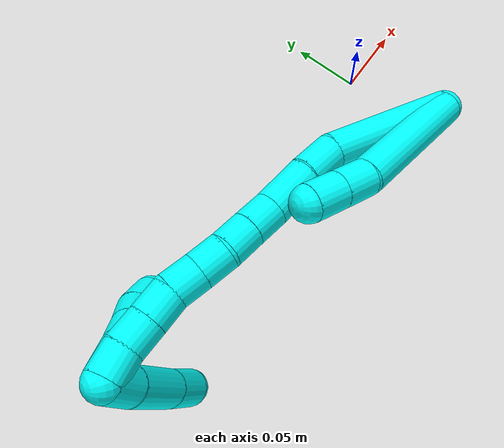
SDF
<sdf version="1.7">
 <world name="default">
  <model name="3">
   <static>0</static>
   <link name="3">
    <collision name="collision-cylinder-e_1_2_8">
     <pose>-0.017356 0.006482 0.048335 -0.133306 -0.341908 0.023047</pose>
     <geometry><cylinder><radius>0.0125</radius><length>0.103528</length></cylinder></geometry>
     <surface>
      <friction><ode><mu>1.16</mu><mu2>1.16</mu2><slip1>0</slip1><slip2>0</slip2></ode></friction>
      <contact><ode><kp>1e+06</kp><kd>1</kd><max_vel>0</max_vel><min_depth>0.001</min_depth></ode></contact>
     </surface>
    </collision>
    <visual name="visual-cylinder-e_1_2_8">
     <pose>-0.017356 0.006482 0.048335 -0.133306 -0.341908 0.023047</pose>
     <geometry><cylinder><radius>0.0125</radius><length>0.103528</length></cylinder></geometry>
     <material><ambient>0.003922 1 0.996078 1</ambient></material>
    </visual>
    <collision name="collision-cylinder-e_2_8_9">
     <pose>-0.035971 0.015232 0.108078 -0.196276 -0.10786 0.010629</pose>
     <geometry><cylinder><radius>0.0125</radius><length>0.023398</length></cylinder></geometry>
     <surface>
      <friction><ode><mu>1.16</mu><mu2>1.16</mu2><slip1>0</slip1><slip2>0</slip2></ode></friction>
      <contact><ode><kp>1e+06</kp><kd>1</kd><max_vel>0</max_vel><min_depth>0.001</min_depth></ode></contact>
     </surface>
    </collision>
    <visual name="visual-cylinder-e_2_8_9">
     <pose>-0.035971 0.015232 0.108078 -0.196276 -0.10786 0.010629</pose>
     <geometry><cylinder><radius>0.0125</radius><length>0.023398</length></cylinder></geometry>
     <material><ambient>0.003922 1 0.996078 1</ambient></material>
    </visual>
    <collision name="collision-cylinder-e_3_9_6">
     <pose>-0.038371 0.019597 0.130773 -0.183703 -0.099003 0.009127</pose>
     <geometry><cylinder><radius>0.0125</radius><length>0.023074</length></cylinder></geometry>
     <surface>
      <friction><ode><mu>1.16</mu><mu2>1.16</mu2><slip1>0</slip1><slip2>0</slip2></ode></friction>
      <contact><ode><kp>1e+06</kp><kd>1</kd><max_vel>0</max_vel><min_depth>0.001</min_depth></ode></contact>
     </surface>
    </collision>
    <visual name="visual-cylinder-e_3_9_6">
     <pose>-0.038371 0.019597 0.130773 -0.183703 -0.099003 0.009127</pose>
     <geometry><cylinder><radius>0.0125</radius><length>0.023074</length></cylinder></geometry>
     <material><ambient>0.003922 1 0.996078 1</ambient></material>
    </visual>
    <collision name="collision-cylinder-e_1_2_10">
     <pose>-0.002557 0.017571 0.015744 -0.840186 -0.107943 0.048254</pose>
     <geometry><cylinder><radius>0.0125</radius><length>0.047462</length></cylinder></geometry>
     <surface>
      <friction><ode><mu>1.16</mu><mu2>1.16</mu2><slip1>0</slip1><slip2>0</slip2></ode></friction>
      <contact><ode><kp>1e+06</kp><kd>1</kd><max_vel>0</max_vel><min_depth>0.001</min_depth></ode></contact>
     </surface>
    </collision>
    <visual name="visual-cylinder-e_1_2_10">
     <pose>-0.002557 0.017571 0.015744 -0.840186 -0.107943 0.048254</pose>
     <geometry><cylinder><radius>0.0125</radius><length>0.047462</length></cylinder></geometry>
     <material><ambient>0.003922 1 0.996078 1</ambient></material>
    </visual>
    <collision name="collision-cylinder-e_2_10_11">
     <pose>-0.003141 0.044669 0.03948 -0.872816 0.157267 -0.073468</pose>
     <geometry><cylinder><radius>0.0125</radius><length>0.025181</length></cylinder></geometry>
     <surface>
      <friction><ode><mu>1.16</mu><mu2>1.16</mu2><slip1>0</slip1><slip2>0</slip2></ode></friction>
      <contact><ode><kp>1e+06</kp><kd>1</kd><max_vel>0</max_vel><min_depth>0.001</min_depth></ode></contact>
     </surface>
    </collision>
    <visual name="visual-cylinder-e_2_10_11">
     <pose>-0.003141 0.044669 0.03948 -0.872816 0.157267 -0.073468</pose>
     <geometry><cylinder><radius>0.0125</radius><length>0.025181</length></cylinder></geometry>
     <material><ambient>0.003922 1 0.996078 1</ambient></material>
    </visual>
    <collision name="collision-cylinder-e_3_11_5">
     <pose>0.000921 0.064548 0.056165 -0.872241 0.153406 -0.071605</pose>
     <geometry><cylinder><radius>0.0125</radius><length>0.027358</length></cylinder></geometry>
     <surface>
      <friction><ode><mu>1.16</mu><mu2>1.16</mu2><slip1>0</slip1><slip2>0</slip2></ode></friction>
      <contact><ode><kp>1e+06</kp><kd>1</kd><max_vel>0</max_vel><min_depth>0.001</min_depth></ode></contact>
     </surface>
    </collision>
    <visual name="visual-cylinder-e_3_11_5">
     <pose>0.000921 0.064548 0.056165 -0.872241 0.153406 -0.071605</pose>
     <geometry><cylinder><radius>0.0125</radius><length>0.027358</length></cylinder></geometry>
     <material><ambient>0.003922 1 0.996078 1</ambient></material>
    </visual>
    <collision name="collision-cylinder-e_1_2_12">
     <pose>-0.001159 0.016606 0.045647 -0.348905 -0.023861 0.004206</pose>
     <geometry><cylinder><radius>0.0125</radius><length>0.097176</length></cylinder></geometry>
     <surface>
      <friction><ode><mu>1.16</mu><mu2>1.16</mu2><slip1>0</slip1><slip2>0</slip2></ode></friction>
      <contact><ode><kp>1e+06</kp><kd>1</kd><max_vel>0</max_vel><min_depth>0.001</min_depth></ode></contact>
     </surface>
    </collision>
    <visual name="visual-cylinder-e_1_2_12">
     <pose>-0.001159 0.016606 0.045647 -0.348905 -0.023861 0.004206</pose>
     <geometry><cylinder><radius>0.0125</radius><length>0.097176</length></cylinder></geometry>
     <material><ambient>0.003922 1 0.996078 1</ambient></material>
    </visual>
    <collision name="collision-cylinder-e_2_12_13">
     <pose>-0.007146 0.036913 0.103636 -0.291383 -0.358514 0.053163</pose>
     <geometry><cylinder><radius>0.0125</radius><length>0.027518</length></cylinder></geometry>
     <surface>
      <friction><ode><mu>1.16</mu><mu2>1.16</mu2><slip1>0</slip1><slip2>0</slip2></ode></friction>
      <contact><ode><kp>1e+06</kp><kd>1</kd><max_vel>0</max_vel><min_depth>0.001</min_depth></ode></contact>
     </surface>
    </collision>
    <visual name="visual-cylinder-e_2_12_13">
     <pose>-0.007146 0.036913 0.103636 -0.291383 -0.358514 0.053163</pose>
     <geometry><cylinder><radius>0.0125</radius><length>0.027518</length></cylinder></geometry>
     <material><ambient>0.003922 1 0.996078 1</ambient></material>
    </visual>
    <collision name="collision-cylinder-e_3_13_14">
     <pose>-0.018667 0.046675 0.130484 -0.395735 -0.402453 0.081749</pose>
     <geometry><cylinder><radius>0.0125</radius><length>0.034173</length></cylinder></geometry>
     <surface>
      <friction><ode><mu>1.16</mu><mu2>1.16</mu2><slip1>0</slip1><slip2>0</slip2></ode></friction>
      <contact><ode><kp>1e+06</kp><kd>1</kd><max_vel>0</max_vel><min_depth>0.001</min_depth></ode></contact>
     </surface>
    </collision>
    <visual name="visual-cylinder-e_3_13_14">
     <pose>-0.018667 0.046675 0.130484 -0.395735 -0.402453 0.081749</pose>
     <geometry><cylinder><radius>0.0125</radius><length>0.034173</length></cylinder></geometry>
     <material><ambient>0.003922 1 0.996078 1</ambient></material>
    </visual>
    <collision name="collision-cylinder-e_4_14_15">
     <pose>-0.029034 0.055506 0.154328 -0.288456 -0.360762 0.052959</pose>
     <geometry><cylinder><radius>0.0125</radius><length>0.02082</length></cylinder></geometry>
     <surface>
      <friction><ode><mu>1.16</mu><mu2>1.16</mu2><slip1>0</slip1><slip2>0</slip2></ode></friction>
      <contact><ode><kp>1e+06</kp><kd>1</kd><max_vel>0</max_vel><min_depth>0.001</min_depth></ode></contact>
     </surface>
    </collision>
    <visual name="visual-cylinder-e_4_14_15">
     <pose>-0.029034 0.055506 0.154328 -0.288456 -0.360762 0.052959</pose>
     <geometry><cylinder><radius>0.0125</radius><length>0.02082</length></cylinder></geometry>
     <material><ambient>0.003922 1 0.996078 1</ambient></material>
    </visual>
    <collision name="collision-cylinder-e_5_15_16">
     <pose>-0.036344 0.061076 0.172683 -0.300994 -0.367525 0.056354</pose>
     <geometry><cylinder><radius>0.0125</radius><length>0.020235</length></cylinder></geometry>
     <surface>
      <friction><ode><mu>1.16</mu><mu2>1.16</mu2><slip1>0</slip1><slip2>0</slip2></ode></friction>
      <contact><ode><kp>1e+06</kp><kd>1</kd><max_vel>0</max_vel><min_depth>0.001</min_depth></ode></contact>
     </surface>
    </collision>
    <visual name="visual-cylinder-e_5_15_16">
     <pose>-0.036344 0.061076 0.172683 -0.300994 -0.367525 0.056354</pose>
     <geometry><cylinder><radius>0.0125</radius><length>0.020235</length></cylinder></geometry>
     <material><ambient>0.003922 1 0.996078 1</ambient></material>
    </visual>
    <collision name="collision-cylinder-e_6_16_17">
     <pose>-0.042545 0.068366 0.190288 -0.481772 -0.258867 0.063928</pose>
     <geometry><cylinder><radius>0.0125</radius><length>0.02005</length></cylinder></geometry>
     <surface>
      <friction><ode><mu>1.16</mu><mu2>1.16</mu2><slip1>0</slip1><slip2>0</slip2></ode></friction>
      <contact><ode><kp>1e+06</kp><kd>1</kd><max_vel>0</max_vel><min_depth>0.001</min_depth></ode></contact>
     </surface>
    </collision>
    <visual name="visual-cylinder-e_6_16_17">
     <pose>-0.042545 0.068366 0.190288 -0.481772 -0.258867 0.063928</pose>
     <geometry><cylinder><radius>0.0125</radius><length>0.02005</length></cylinder></geometry>
     <material><ambient>0.003922 1 0.996078 1</ambient></material>
    </visual>
    <collision name="collision-cylinder-e_7_17_18">
     <pose>-0.047616 0.076654 0.207791 -0.402735 -0.252951 0.051901</pose>
     <geometry><cylinder><radius>0.0125</radius><length>0.020018</length></cylinder></geometry>
     <surface>
      <friction><ode><mu>1.16</mu><mu2>1.16</mu2><slip1>0</slip1><slip2>0</slip2></ode></friction>
      <contact><ode><kp>1e+06</kp><kd>1</kd><max_vel>0</max_vel><min_depth>0.001</min_depth></ode></contact>
     </surface>
    </collision>
    <visual name="visual-cylinder-e_7_17_18">
     <pose>-0.047616 0.076654 0.207791 -0.402735 -0.252951 0.051901</pose>
     <geometry><cylinder><radius>0.0125</radius><length>0.020018</length></cylinder></geometry>
     <material><ambient>0.003922 1 0.996078 1</ambient></material>
    </visual>
    <collision name="collision-cylinder-e_8_18_19">
     <pose>-0.05497 0.08381 0.224786 -0.393894 -0.50611 0.103107</pose>
     <geometry><cylinder><radius>0.0125</radius><length>0.020006</length></cylinder></geometry>
     <surface>
      <friction><ode><mu>1.16</mu><mu2>1.16</mu2><slip1>0</slip1><slip2>0</slip2></ode></friction>
      <contact><ode><kp>1e+06</kp><kd>1</kd><max_vel>0</max_vel><min_depth>0.001</min_depth></ode></contact>
     </surface>
    </collision>
    <visual name="visual-cylinder-e_8_18_19">
     <pose>-0.05497 0.08381 0.224786 -0.393894 -0.50611 0.103107</pose>
     <geometry><cylinder><radius>0.0125</radius><length>0.020006</length></cylinder></geometry>
     <material><ambient>0.003922 1 0.996078 1</ambient></material>
    </visual>
    <collision name="collision-cylinder-e_9_19_20">
     <pose>-0.064542 0.090551 0.241006 -0.393878 -0.491796 0.100069</pose>
     <geometry><cylinder><radius>0.0125</radius><length>0.020003</length></cylinder></geometry>
     <surface>
      <friction><ode><mu>1.16</mu><mu2>1.16</mu2><slip1>0</slip1><slip2>0</slip2></ode></friction>
      <contact><ode><kp>1e+06</kp><kd>1</kd><max_vel>0</max_vel><min_depth>0.001</min_depth></ode></contact>
     </surface>
    </collision>
    <visual name="visual-cylinder-e_9_19_20">
     <pose>-0.064542 0.090551 0.241006 -0.393878 -0.491796 0.100069</pose>
     <geometry><cylinder><radius>0.0125</radius><length>0.020003</length></cylinder></geometry>
     <material><ambient>0.003922 1 0.996078 1</ambient></material>
    </visual>
    <collision name="collision-cylinder-e_10_20_1">
     <pose>-0.075486 0.095948 0.256713 -0.260087 -0.671345 0.09119</pose>
     <geometry><cylinder><radius>0.0125</radius><length>0.02</length></cylinder></geometry>
     <surface>
      <friction><ode><mu>1.16</mu><mu2>1.16</mu2><slip1>0</slip1><slip2>0</slip2></ode></friction>
      <contact><ode><kp>1e+06</kp><kd>1</kd><max_vel>0</max_vel><min_depth>0.001</min_depth></ode></contact>
     </surface>
    </collision>
    <visual name="visual-cylinder-e_10_20_1">
     <pose>-0.075486 0.095948 0.256713 -0.260087 -0.671345 0.09119</pose>
     <geometry><cylinder><radius>0.0125</radius><length>0.02</length></cylinder></geometry>
     <material><ambient>0.003922 1 0.996078 1</ambient></material>
    </visual>
    <collision name="collision-cylinder-e_1_1_21">
     <pose>-0.084308 0.105138 0.255623 -2.44943 -0.227417 0.613416</pose>
     <geometry><cylinder><radius>0.0125</radius><length>0.023082</length></cylinder></geometry>
     <surface>
      <friction><ode><mu>1.16</mu><mu2>1.16</mu2><slip1>0</slip1><slip2>0</slip2></ode></friction>
      <contact><ode><kp>1e+06</kp><kd>1</kd><max_vel>0</max_vel><min_depth>0.001</min_depth></ode></contact>
     </surface>
    </collision>
    <visual name="visual-cylinder-e_1_1_21">
     <pose>-0.084308 0.105138 0.255623 -2.44943 -0.227417 0.613416</pose>
     <geometry><cylinder><radius>0.0125</radius><length>0.023082</length></cylinder></geometry>
     <material><ambient>0.003922 1 0.996078 1</ambient></material>
    </visual>
    <collision name="collision-cylinder-e_2_21_22">
     <pose>-0.089858 0.127135 0.230035 -2.42257 -0.130258 0.343643</pose>
     <geometry><cylinder><radius>0.0125</radius><length>0.045389</length></cylinder></geometry>
     <surface>
      <friction><ode><mu>1.16</mu><mu2>1.16</mu2><slip1>0</slip1><slip2>0</slip2></ode></friction>
      <contact><ode><kp>1e+06</kp><kd>1</kd><max_vel>0</max_vel><min_depth>0.001</min_depth></ode></contact>
     </surface>
    </collision>
    <visual name="visual-cylinder-e_2_21_22">
     <pose>-0.089858 0.127135 0.230035 -2.42257 -0.130258 0.343643</pose>
     <geometry><cylinder><radius>0.0125</radius><length>0.045389</length></cylinder></geometry>
     <material><ambient>0.003922 1 0.996078 1</ambient></material>
    </visual>
    <collision name="collision-cylinder-e_3_22_4">
     <pose>-0.093987 0.152414 0.201367 -2.41373 -0.074971 0.196284</pose>
     <geometry><cylinder><radius>0.0125</radius><length>0.031529</length></cylinder></geometry>
     <surface>
      <friction><ode><mu>1.16</mu><mu2>1.16</mu2><slip1>0</slip1><slip2>0</slip2></ode></friction>
      <contact><ode><kp>1e+06</kp><kd>1</kd><max_vel>0</max_vel><min_depth>0.001</min_depth></ode></contact>
     </surface>
    </collision>
    <visual name="visual-cylinder-e_3_22_4">
     <pose>-0.093987 0.152414 0.201367 -2.41373 -0.074971 0.196284</pose>
     <geometry><cylinder><radius>0.0125</radius><length>0.031529</length></cylinder></geometry>
     <material><ambient>0.003922 1 0.996078 1</ambient></material>
    </visual>
    <collision name="collision-cylinder-e_1_1_23">
     <pose>-0.072197 0.107226 0.252509 -2.4748 0.565625 -1.39626</pose>
     <geometry><cylinder><radius>0.0125</radius><length>0.035484</length></cylinder></geometry>
     <surface>
      <friction><ode><mu>1.16</mu><mu2>1.16</mu2><slip1>0</slip1><slip2>0</slip2></ode></friction>
      <contact><ode><kp>1e+06</kp><kd>1</kd><max_vel>0</max_vel><min_depth>0.001</min_depth></ode></contact>
     </surface>
    </collision>
    <visual name="visual-cylinder-e_1_1_23">
     <pose>-0.072197 0.107226 0.252509 -2.4748 0.565625 -1.39626</pose>
     <geometry><cylinder><radius>0.0125</radius><length>0.035484</length></cylinder></geometry>
     <material><ambient>0.003922 1 0.996078 1</ambient></material>
    </visual>
    <collision name="collision-cylinder-e_2_23_24">
     <pose>-0.056318 0.12181 0.233721 -2.49298 0.626278 -1.53327</pose>
     <geometry><cylinder><radius>0.0125</radius><length>0.021739</length></cylinder></geometry>
     <surface>
      <friction><ode><mu>1.16</mu><mu2>1.16</mu2><slip1>0</slip1><slip2>0</slip2></ode></friction>
      <contact><ode><kp>1e+06</kp><kd>1</kd><max_vel>0</max_vel><min_depth>0.001</min_depth></ode></contact>
     </surface>
    </collision>
    <visual name="visual-cylinder-e_2_23_24">
     <pose>-0.056318 0.12181 0.233721 -2.49298 0.626278 -1.53327</pose>
     <geometry><cylinder><radius>0.0125</radius><length>0.021739</length></cylinder></geometry>
     <material><ambient>0.003922 1 0.996078 1</ambient></material>
    </visual>
    <collision name="collision-cylinder-e_3_24_25">
     <pose>-0.043609 0.133193 0.220361 -2.37857 0.625582 -1.35698</pose>
     <geometry><cylinder><radius>0.0125</radius><length>0.021647</length></cylinder></geometry>
     <surface>
      <friction><ode><mu>1.16</mu><mu2>1.16</mu2><slip1>0</slip1><slip2>0</slip2></ode></friction>
      <contact><ode><kp>1e+06</kp><kd>1</kd><max_vel>0</max_vel><min_depth>0.001</min_depth></ode></contact>
     </surface>
    </collision>
    <visual name="visual-cylinder-e_3_24_25">
     <pose>-0.043609 0.133193 0.220361 -2.37857 0.625582 -1.35698</pose>
     <geometry><cylinder><radius>0.0125</radius><length>0.021647</length></cylinder></geometry>
     <material><ambient>0.003922 1 0.996078 1</ambient></material>
    </visual>
    <collision name="collision-cylinder-e_4_25_3">
     <pose>-0.032651 0.143107 0.205334 -2.72434 0.45253 -1.65448</pose>
     <geometry><cylinder><radius>0.0125</radius><length>0.02113</length></cylinder></geometry>
     <surface>
      <friction><ode><mu>1.16</mu><mu2>1.16</mu2><slip1>0</slip1><slip2>0</slip2></ode></friction>
      <contact><ode><kp>1e+06</kp><kd>1</kd><max_vel>0</max_vel><min_depth>0.001</min_depth></ode></contact>
     </surface>
    </collision>
    <visual name="visual-cylinder-e_4_25_3">
     <pose>-0.032651 0.143107 0.205334 -2.72434 0.45253 -1.65448</pose>
     <geometry><cylinder><radius>0.0125</radius><length>0.02113</length></cylinder></geometry>
     <material><ambient>0.003922 1 0.996078 1</ambient></material>
    </visual>
    <collision name="collision-sphere-3">
     <pose>-0.028032 0.146958 0.196647 0 -0 0</pose>
     <geometry><sphere><radius>0.0125</radius></sphere></geometry>
     <surface>
      <friction><ode><mu>1.16</mu><mu2>1.16</mu2><slip1>0</slip1><slip2>0</slip2></ode></friction>
      <contact><ode><kp>1e+06</kp><kd>1</kd><max_vel>0</max_vel><min_depth>0.001</min_depth></ode></contact>
     </surface>
    </collision>
    <visual name="visual-sphere-3">
     <pose>-0.028032 0.146958 0.196647 0 -0 0</pose>
     <geometry><sphere><radius>0.0125</radius></sphere></geometry>
     <material><ambient>0.003922 1 0.996078 1</ambient></material>
    </visual>
    <collision name="collision-sphere-25">
     <pose>-0.037271 0.139257 0.21402 0 -0 0</pose>
     <geometry><sphere><radius>0.0125</radius></sphere></geometry>
     <surface>
      <friction><ode><mu>1.16</mu><mu2>1.16</mu2><slip1>0</slip1><slip2>0</slip2></ode></friction>
      <contact><ode><kp>1e+06</kp><kd>1</kd><max_vel>0</max_vel><min_depth>0.001</min_depth></ode></contact>
     </surface>
    </collision>
    <visual name="visual-sphere-25">
     <pose>-0.037271 0.139257 0.21402 0 -0 0</pose>
     <geometry><sphere><radius>0.0125</radius></sphere></geometry>
     <material><ambient>0.003922 1 0.996078 1</ambient></material>
    </visual>
    <collision name="collision-sphere-24">
     <pose>-0.049947 0.127129 0.226703 0 -0 0</pose>
     <geometry><sphere><radius>0.0125</radius></sphere></geometry>
     <surface>
      <friction><ode><mu>1.16</mu><mu2>1.16</mu2><slip1>0</slip1><slip2>0</slip2></ode></friction>
      <contact><ode><kp>1e+06</kp><kd>1</kd><max_vel>0</max_vel><min_depth>0.001</min_depth></ode></contact>
     </surface>
    </collision>
    <visual name="visual-sphere-24">
     <pose>-0.049947 0.127129 0.226703 0 -0 0</pose>
     <geometry><sphere><radius>0.0125</radius></sphere></geometry>
     <material><ambient>0.003922 1 0.996078 1</ambient></material>
    </visual>
    <collision name="collision-sphere-23">
     <pose>-0.062689 0.11649 0.240739 0 -0 0</pose>
     <geometry><sphere><radius>0.0125</radius></sphere></geometry>
     <surface>
      <friction><ode><mu>1.16</mu><mu2>1.16</mu2><slip1>0</slip1><slip2>0</slip2></ode></friction>
      <contact><ode><kp>1e+06</kp><kd>1</kd><max_vel>0</max_vel><min_depth>0.001</min_depth></ode></contact>
     </surface>
    </collision>
    <visual name="visual-sphere-23">
     <pose>-0.062689 0.11649 0.240739 0 -0 0</pose>
     <geometry><sphere><radius>0.0125</radius></sphere></geometry>
     <material><ambient>0.003922 1 0.996078 1</ambient></material>
    </visual>
    <collision name="collision-sphere-4">
     <pose>-0.095167 0.162872 0.18963 0 -0 0</pose>
     <geometry><sphere><radius>0.0125</radius></sphere></geometry>
     <surface>
      <friction><ode><mu>1.16</mu><mu2>1.16</mu2><slip1>0</slip1><slip2>0</slip2></ode></friction>
      <contact><ode><kp>1e+06</kp><kd>1</kd><max_vel>0</max_vel><min_depth>0.001</min_depth></ode></contact>
     </surface>
    </collision>
    <visual name="visual-sphere-4">
     <pose>-0.095167 0.162872 0.18963 0 -0 0</pose>
     <geometry><sphere><radius>0.0125</radius></sphere></geometry>
     <material><ambient>0.003922 1 0.996078 1</ambient></material>
    </visual>
    <collision name="collision-sphere-22">
     <pose>-0.092806 0.141956 0.213103 0 -0 0</pose>
     <geometry><sphere><radius>0.0125</radius></sphere></geometry>
     <surface>
      <friction><ode><mu>1.16</mu><mu2>1.16</mu2><slip1>0</slip1><slip2>0</slip2></ode></friction>
      <contact><ode><kp>1e+06</kp><kd>1</kd><max_vel>0</max_vel><min_depth>0.001</min_depth></ode></contact>
     </surface>
    </collision>
    <visual name="visual-sphere-22">
     <pose>-0.092806 0.141956 0.213103 0 -0 0</pose>
     <geometry><sphere><radius>0.0125</radius></sphere></geometry>
     <material><ambient>0.003922 1 0.996078 1</ambient></material>
    </visual>
    <collision name="collision-sphere-21">
     <pose>-0.08691 0.112314 0.246967 0 -0 0</pose>
     <geometry><sphere><radius>0.0125</radius></sphere></geometry>
     <surface>
      <friction><ode><mu>1.16</mu><mu2>1.16</mu2><slip1>0</slip1><slip2>0</slip2></ode></friction>
      <contact><ode><kp>1e+06</kp><kd>1</kd><max_vel>0</max_vel><min_depth>0.001</min_depth></ode></contact>
     </surface>
    </collision>
    <visual name="visual-sphere-21">
     <pose>-0.08691 0.112314 0.246967 0 -0 0</pose>
     <geometry><sphere><radius>0.0125</radius></sphere></geometry>
     <material><ambient>0.003922 1 0.996078 1</ambient></material>
    </visual>
    <collision name="collision-sphere-1">
     <pose>-0.081706 0.097962 0.26428 0 -0 0</pose>
     <geometry><sphere><radius>0.0125</radius></sphere></geometry>
     <surface>
      <friction><ode><mu>1.16</mu><mu2>1.16</mu2><slip1>0</slip1><slip2>0</slip2></ode></friction>
      <contact><ode><kp>1e+06</kp><kd>1</kd><max_vel>0</max_vel><min_depth>0.001</min_depth></ode></contact>
     </surface>
    </collision>
    <visual name="visual-sphere-1">
     <pose>-0.081706 0.097962 0.26428 0 -0 0</pose>
     <geometry><sphere><radius>0.0125</radius></sphere></geometry>
     <material><ambient>0.003922 1 0.996078 1</ambient></material>
    </visual>
    <collision name="collision-sphere-11">
     <pose>-0.001169 0.054196 0.047471 0 -0 0</pose>
     <geometry><sphere><radius>0.0125</radius></sphere></geometry>
     <surface>
      <friction><ode><mu>1.16</mu><mu2>1.16</mu2><slip1>0</slip1><slip2>0</slip2></ode></friction>
      <contact><ode><kp>1e+06</kp><kd>1</kd><max_vel>0</max_vel><min_depth>0.001</min_depth></ode></contact>
     </surface>
    </collision>
    <visual name="visual-sphere-11">
     <pose>-0.001169 0.054196 0.047471 0 -0 0</pose>
     <geometry><sphere><radius>0.0125</radius></sphere></geometry>
     <material><ambient>0.003922 1 0.996078 1</ambient></material>
    </visual>
    <collision name="collision-sphere-10">
     <pose>-0.005113 0.035142 0.031488 0 -0 0</pose>
     <geometry><sphere><radius>0.0125</radius></sphere></geometry>
     <surface>
      <friction><ode><mu>1.16</mu><mu2>1.16</mu2><slip1>0</slip1><slip2>0</slip2></ode></friction>
      <contact><ode><kp>1e+06</kp><kd>1</kd><max_vel>0</max_vel><min_depth>0.001</min_depth></ode></contact>
     </surface>
    </collision>
    <visual name="visual-sphere-10">
     <pose>-0.005113 0.035142 0.031488 0 -0 0</pose>
     <geometry><sphere><radius>0.0125</radius></sphere></geometry>
     <material><ambient>0.003922 1 0.996078 1</ambient></material>
    </visual>
    <collision name="collision-sphere-6">
     <pose>-0.039511 0.021694 0.14206 0 -0 0</pose>
     <geometry><sphere><radius>0.0125</radius></sphere></geometry>
     <surface>
      <friction><ode><mu>1.16</mu><mu2>1.16</mu2><slip1>0</slip1><slip2>0</slip2></ode></friction>
      <contact><ode><kp>1e+06</kp><kd>1</kd><max_vel>0</max_vel><min_depth>0.001</min_depth></ode></contact>
     </surface>
    </collision>
    <visual name="visual-sphere-6">
     <pose>-0.039511 0.021694 0.14206 0 -0 0</pose>
     <geometry><sphere><radius>0.0125</radius></sphere></geometry>
     <material><ambient>0.003922 1 0.996078 1</ambient></material>
    </visual>
    <collision name="collision-sphere-9">
     <pose>-0.03723 0.0175 0.119486 0 -0 0</pose>
     <geometry><sphere><radius>0.0125</radius></sphere></geometry>
     <surface>
      <friction><ode><mu>1.16</mu><mu2>1.16</mu2><slip1>0</slip1><slip2>0</slip2></ode></friction>
      <contact><ode><kp>1e+06</kp><kd>1</kd><max_vel>0</max_vel><min_depth>0.001</min_depth></ode></contact>
     </surface>
    </collision>
    <visual name="visual-sphere-9">
     <pose>-0.03723 0.0175 0.119486 0 -0 0</pose>
     <geometry><sphere><radius>0.0125</radius></sphere></geometry>
     <material><ambient>0.003922 1 0.996078 1</ambient></material>
    </visual>
    <collision name="collision-sphere-2">
     <geometry><sphere><radius>0.0125</radius></sphere></geometry>
     <surface>
      <friction><ode><mu>1.16</mu><mu2>1.16</mu2><slip1>0</slip1><slip2>0</slip2></ode></friction>
      <contact><ode><kp>1e+06</kp><kd>1</kd><max_vel>0</max_vel><min_depth>0.001</min_depth></ode></contact>
     </surface>
    </collision>
    <visual name="visual-sphere-2">
     <geometry><sphere><radius>0.0125</radius></sphere></geometry>
     <material><ambient>0.003922 1 0.996078 1</ambient></material>
    </visual>
    <collision name="collision-sphere-19">
     <pose>-0.05982 0.087168 0.232865 0 -0 0</pose>
     <geometry><sphere><radius>0.0125</radius></sphere></geometry>
     <surface>
      <friction><ode><mu>1.16</mu><mu2>1.16</mu2><slip1>0</slip1><slip2>0</slip2></ode></friction>
      <contact><ode><kp>1e+06</kp><kd>1</kd><max_vel>0</max_vel><min_depth>0.001</min_depth></ode></contact>
     </surface>
    </collision>
    <visual name="visual-sphere-19">
     <pose>-0.05982 0.087168 0.232865 0 -0 0</pose>
     <geometry><sphere><radius>0.0125</radius></sphere></geometry>
     <material><ambient>0.003922 1 0.996078 1</ambient></material>
    </visual>
    <collision name="collision-sphere-8">
     <pose>-0.034711 0.012964 0.09667 0 -0 0</pose>
     <geometry><sphere><radius>0.0125</radius></sphere></geometry>
     <surface>
      <friction><ode><mu>1.16</mu><mu2>1.16</mu2><slip1>0</slip1><slip2>0</slip2></ode></friction>
      <contact><ode><kp>1e+06</kp><kd>1</kd><max_vel>0</max_vel><min_depth>0.001</min_depth></ode></contact>
     </surface>
    </collision>
    <visual name="visual-sphere-8">
     <pose>-0.034711 0.012964 0.09667 0 -0 0</pose>
     <geometry><sphere><radius>0.0125</radius></sphere></geometry>
     <material><ambient>0.003922 1 0.996078 1</ambient></material>
    </visual>
    <collision name="collision-sphere-5">
     <pose>0.003011 0.0749 0.064859 0 -0 0</pose>
     <geometry><sphere><radius>0.0125</radius></sphere></geometry>
     <surface>
      <friction><ode><mu>1.16</mu><mu2>1.16</mu2><slip1>0</slip1><slip2>0</slip2></ode></friction>
      <contact><ode><kp>1e+06</kp><kd>1</kd><max_vel>0</max_vel><min_depth>0.001</min_depth></ode></contact>
     </surface>
    </collision>
    <visual name="visual-sphere-5">
     <pose>0.003011 0.0749 0.064859 0 -0 0</pose>
     <geometry><sphere><radius>0.0125</radius></sphere></geometry>
     <material><ambient>0.003922 1 0.996078 1</ambient></material>
    </visual>
    <collision name="collision-sphere-12">
     <pose>-0.002318 0.033212 0.091295 0 -0 0</pose>
     <geometry><sphere><radius>0.0125</radius></sphere></geometry>
     <surface>
      <friction><ode><mu>1.16</mu><mu2>1.16</mu2><slip1>0</slip1><slip2>0</slip2></ode></friction>
      <contact><ode><kp>1e+06</kp><kd>1</kd><max_vel>0</max_vel><min_depth>0.001</min_depth></ode></contact>
     </surface>
    </collision>
    <visual name="visual-sphere-12">
     <pose>-0.002318 0.033212 0.091295 0 -0 0</pose>
     <geometry><sphere><radius>0.0125</radius></sphere></geometry>
     <material><ambient>0.003922 1 0.996078 1</ambient></material>
    </visual>
    <collision name="collision-sphere-13">
     <pose>-0.011974 0.040615 0.115978 0 -0 0</pose>
     <geometry><sphere><radius>0.0125</radius></sphere></geometry>
     <surface>
      <friction><ode><mu>1.16</mu><mu2>1.16</mu2><slip1>0</slip1><slip2>0</slip2></ode></friction>
      <contact><ode><kp>1e+06</kp><kd>1</kd><max_vel>0</max_vel><min_depth>0.001</min_depth></ode></contact>
     </surface>
    </collision>
    <visual name="visual-sphere-13">
     <pose>-0.011974 0.040615 0.115978 0 -0 0</pose>
     <geometry><sphere><radius>0.0125</radius></sphere></geometry>
     <material><ambient>0.003922 1 0.996078 1</ambient></material>
    </visual>
    <collision name="collision-sphere-14">
     <pose>-0.025359 0.052736 0.14499 0 -0 0</pose>
     <geometry><sphere><radius>0.0125</radius></sphere></geometry>
     <surface>
      <friction><ode><mu>1.16</mu><mu2>1.16</mu2><slip1>0</slip1><slip2>0</slip2></ode></friction>
      <contact><ode><kp>1e+06</kp><kd>1</kd><max_vel>0</max_vel><min_depth>0.001</min_depth></ode></contact>
     </surface>
    </collision>
    <visual name="visual-sphere-14">
     <pose>-0.025359 0.052736 0.14499 0 -0 0</pose>
     <geometry><sphere><radius>0.0125</radius></sphere></geometry>
     <material><ambient>0.003922 1 0.996078 1</ambient></material>
    </visual>
    <collision name="collision-sphere-15">
     <pose>-0.032708 0.058277 0.163665 0 -0 0</pose>
     <geometry><sphere><radius>0.0125</radius></sphere></geometry>
     <surface>
      <friction><ode><mu>1.16</mu><mu2>1.16</mu2><slip1>0</slip1><slip2>0</slip2></ode></friction>
      <contact><ode><kp>1e+06</kp><kd>1</kd><max_vel>0</max_vel><min_depth>0.001</min_depth></ode></contact>
     </surface>
    </collision>
    <visual name="visual-sphere-15">
     <pose>-0.032708 0.058277 0.163665 0 -0 0</pose>
     <geometry><sphere><radius>0.0125</radius></sphere></geometry>
     <material><ambient>0.003922 1 0.996078 1</ambient></material>
    </visual>
    <collision name="collision-sphere-16">
     <pose>-0.039979 0.063875 0.1817 0 -0 0</pose>
     <geometry><sphere><radius>0.0125</radius></sphere></geometry>
     <surface>
      <friction><ode><mu>1.16</mu><mu2>1.16</mu2><slip1>0</slip1><slip2>0</slip2></ode></friction>
      <contact><ode><kp>1e+06</kp><kd>1</kd><max_vel>0</max_vel><min_depth>0.001</min_depth></ode></contact>
     </surface>
    </collision>
    <visual name="visual-sphere-16">
     <pose>-0.039979 0.063875 0.1817 0 -0 0</pose>
     <geometry><sphere><radius>0.0125</radius></sphere></geometry>
     <material><ambient>0.003922 1 0.996078 1</ambient></material>
    </visual>
    <collision name="collision-sphere-17">
     <pose>-0.045111 0.072856 0.198876 0 -0 0</pose>
     <geometry><sphere><radius>0.0125</radius></sphere></geometry>
     <surface>
      <friction><ode><mu>1.16</mu><mu2>1.16</mu2><slip1>0</slip1><slip2>0</slip2></ode></friction>
      <contact><ode><kp>1e+06</kp><kd>1</kd><max_vel>0</max_vel><min_depth>0.001</min_depth></ode></contact>
     </surface>
    </collision>
    <visual name="visual-sphere-17">
     <pose>-0.045111 0.072856 0.198876 0 -0 0</pose>
     <geometry><sphere><radius>0.0125</radius></sphere></geometry>
     <material><ambient>0.003922 1 0.996078 1</ambient></material>
    </visual>
    <collision name="collision-sphere-18">
     <pose>-0.050121 0.080452 0.216706 0 -0 0</pose>
     <geometry><sphere><radius>0.0125</radius></sphere></geometry>
     <surface>
      <friction><ode><mu>1.16</mu><mu2>1.16</mu2><slip1>0</slip1><slip2>0</slip2></ode></friction>
      <contact><ode><kp>1e+06</kp><kd>1</kd><max_vel>0</max_vel><min_depth>0.001</min_depth></ode></contact>
     </surface>
    </collision>
    <visual name="visual-sphere-18">
     <pose>-0.050121 0.080452 0.216706 0 -0 0</pose>
     <geometry><sphere><radius>0.0125</radius></sphere></geometry>
     <material><ambient>0.003922 1 0.996078 1</ambient></material>
    </visual>
    <collision name="collision-sphere-20">
     <pose>-0.069265 0.093935 0.249147 0 -0 0</pose>
     <geometry><sphere><radius>0.0125</radius></sphere></geometry>
     <surface>
      <friction><ode><mu>1.16</mu><mu2>1.16</mu2><slip1>0</slip1><slip2>0</slip2></ode></friction>
      <contact><ode><kp>1e+06</kp><kd>1</kd><max_vel>0</max_vel><min_depth>0.001</min_depth></ode></contact>
     </surface>
    </collision>
    <visual name="visual-sphere-20">
     <pose>-0.069265 0.093935 0.249147 0 -0 0</pose>
     <geometry><sphere><radius>0.0125</radius></sphere></geometry>
     <material><ambient>0.003922 1 0.996078 1</ambient></material>
    </visual>
    <inertial>
     <pose>-0.034801 0.06066 0.134066 0 -0 0</pose>
     <mass>0.75</mass>
     <inertia><ixx>0.000216</ixx><ixy>0</ixy><ixz>0</ixz><iyy>0.000219</iyy><iyz>0</iyz><izz>-9e-06</izz></inertia>
    </inertial>
   </link>
   <pose>0.006023 -0.073503 0.037842 -0.981025 0.037018 1.08178</pose>
  </model>
 </world>
</sdf>
